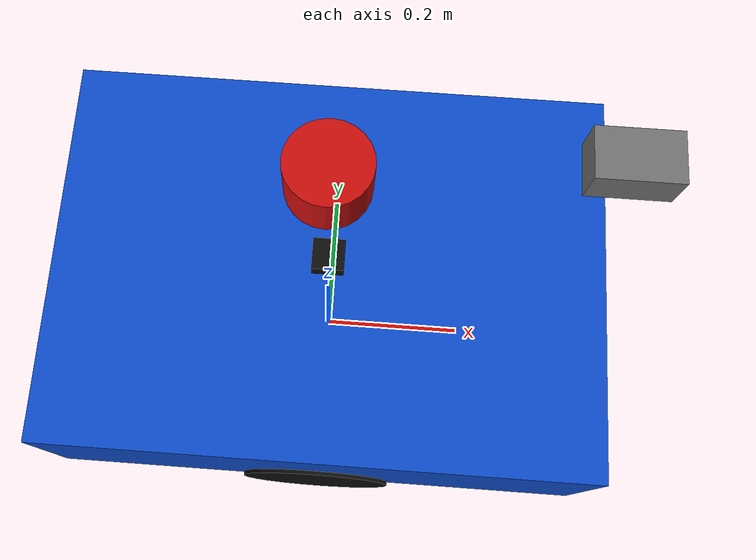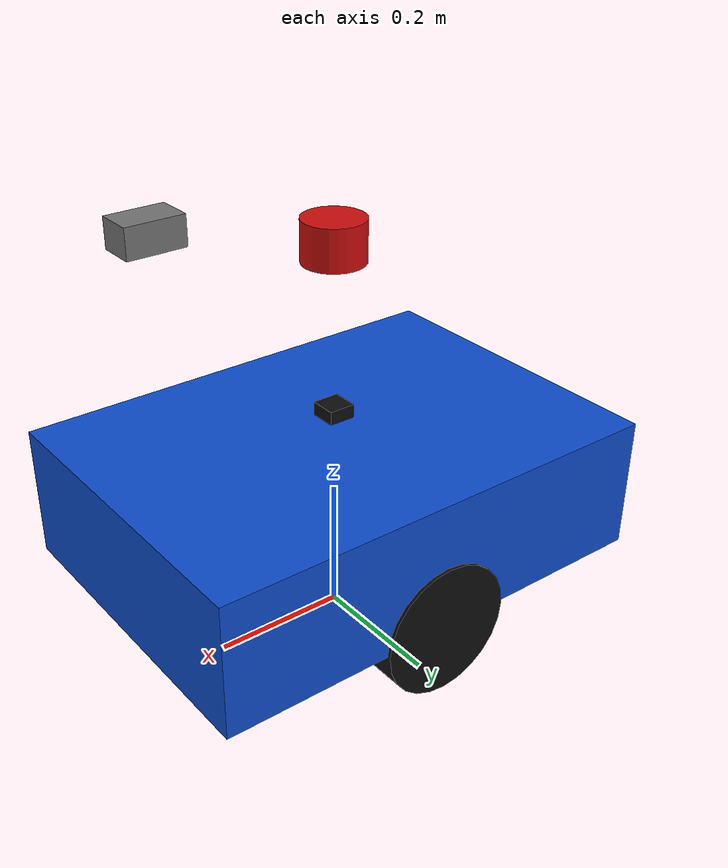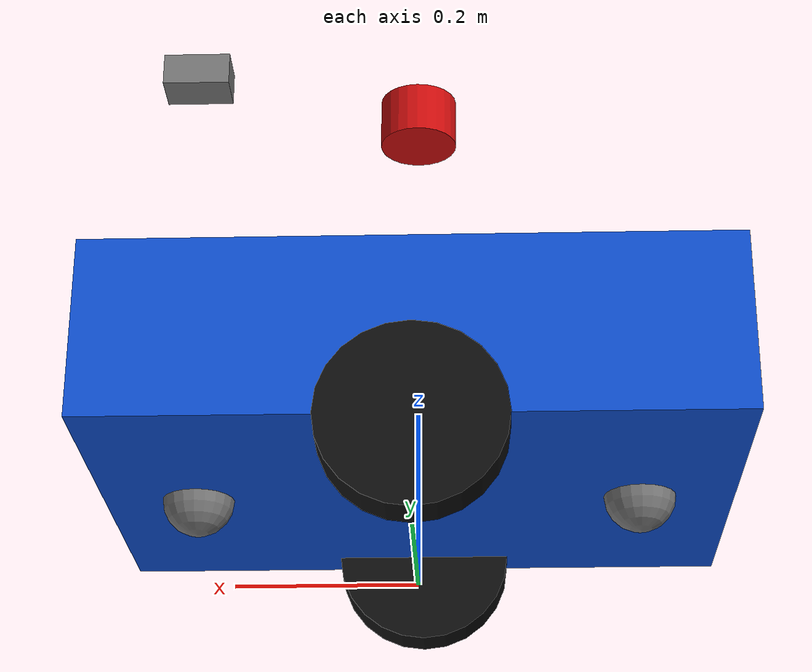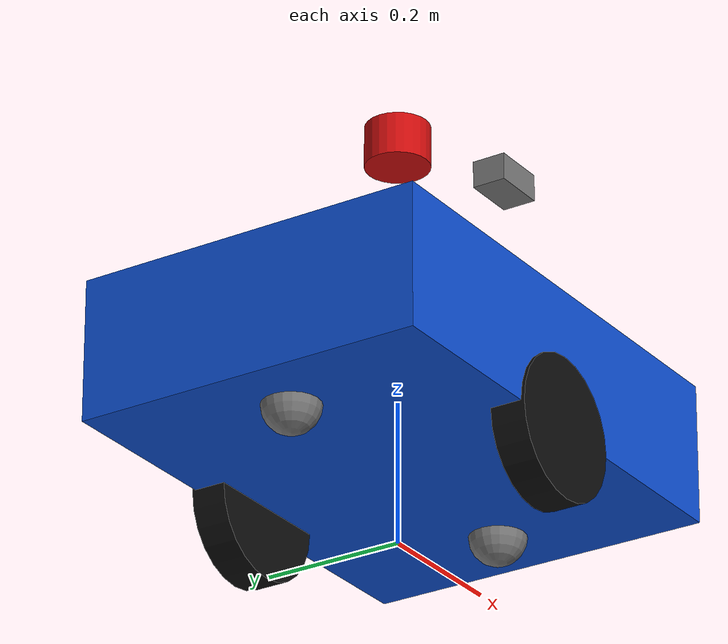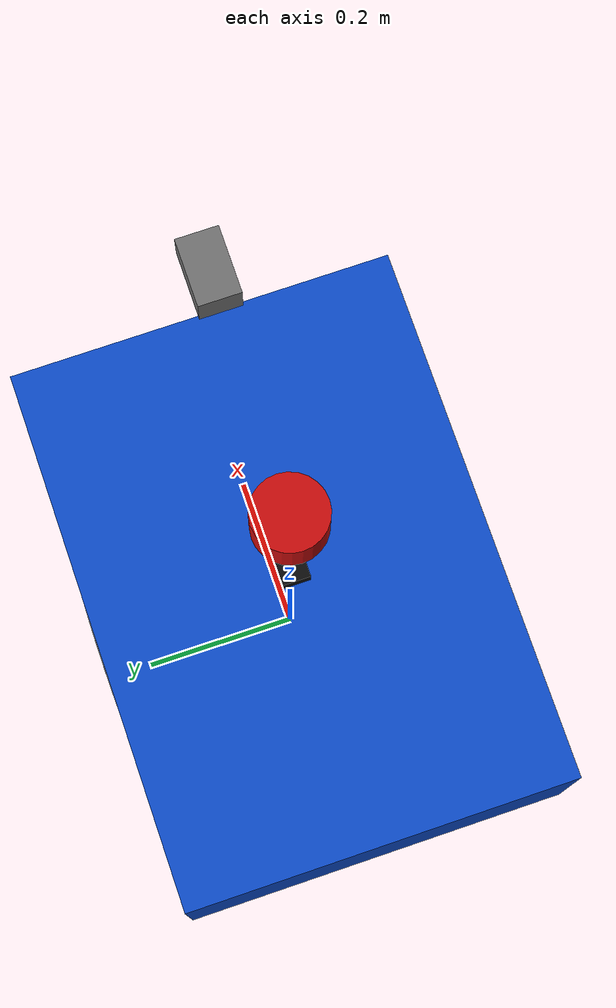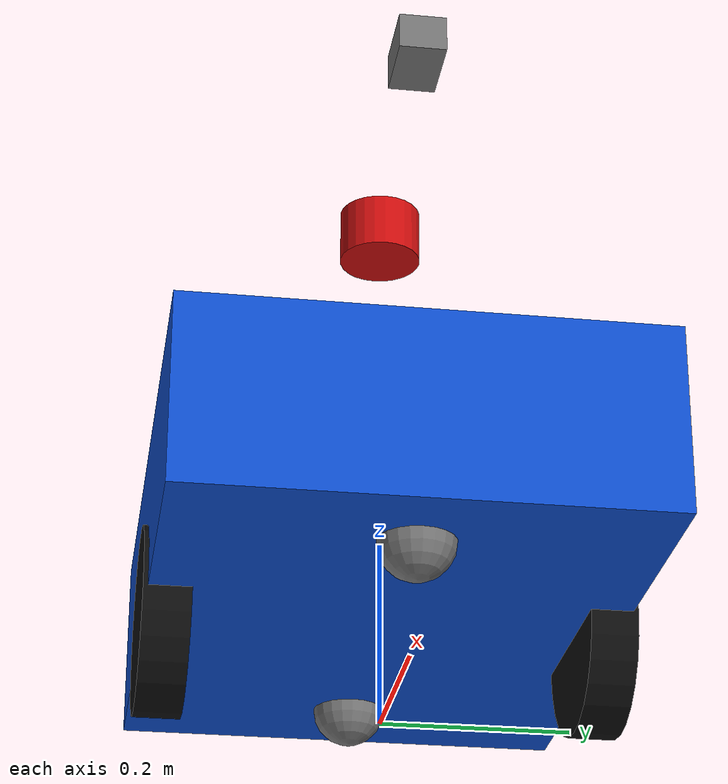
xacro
<?xml version="1.0"?>

<robot name="autonomous_shelf_robot"
       xmlns:xacro="http://www.ros.org/wiki/xacro">

  <xacro:include filename="common_properties.xacro"/>
  <xacro:include filename="base.xacro"/>
  <xacro:include filename="wheels.xacro"/>
  <xacro:include filename="sensors.xacro"/>
  <xacro:include filename="ros2_control.xacro"/>
  <xacro:include filename="gazebo.xacro"/>
  <xacro:shelf_robot_ros2_control/>

</robot>

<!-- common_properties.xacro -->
<robot xmlns:xacro="http://www.ros.org/wiki/xacro">

  <!-- Mathematical constants -->

  <!-- Base dimensions -->
  <xacro:property name="base_length" value="0.70"/>
  <xacro:property name="base_width" value="0.50"/>
  <xacro:property name="base_height" value="0.20"/>

  <!-- Base ground clearance -->
  <xacro:property name="base_ground_clearance" value="0.10"/>

  <!-- Wheel dimensions -->
  <xacro:property name="wheel_radius" value="0.10"/>
  <xacro:property name="wheel_width" value="0.05"/>
  <xacro:property name="wheel_separation" value="0.46"/>

  <!-- Caster dimensions -->
  <xacro:property name="caster_radius" value="0.04"/>

  <!-- Sensor placement -->
  <xacro:property name="lidar_height" value="0.28"/>
  <xacro:property name="camera_height" value="0.35"/>

  <!-- Approximate component masses -->
  <xacro:property name="base_mass" value="30.0"/>
  <xacro:property name="wheel_mass" value="2.0"/>
  <xacro:property name="caster_mass" value="0.5"/>

  <!-- Colors -->
  <material name="robot_blue">
    <color rgba="0.05 0.30 0.80 1.0"/>
  </material>

  <material name="robot_black">
    <color rgba="0.05 0.05 0.05 1.0"/>
  </material>

  <material name="robot_gray">
    <color rgba="0.45 0.45 0.45 1.0"/>
  </material>

  <material name="sensor_red">
    <color rgba="0.80 0.05 0.05 1.0"/>
  </material>

  <!-- Inertial calculation for a rectangular box -->
  <xacro:macro name="box_inertial" params="mass x y z origin_xyz:='0 0 0'">
    <inertial>
      <origin xyz="${origin_xyz}" rpy="0 0 0"/>
      <mass value="${mass}"/>
      <inertia
        ixx="${mass * (y*y + z*z) / 12.0}"
        ixy="0.0"
        ixz="0.0"
        iyy="${mass * (x*x + z*z) / 12.0}"
        iyz="0.0"
        izz="${mass * (x*x + y*y) / 12.0}"/>
    </inertial>
  </xacro:macro>

  <!-- Inertial calculation for a cylinder aligned with the Y axis -->
  <xacro:macro name="wheel_inertial" params="mass radius width">
    <inertial>
      <origin xyz="0 0 0" rpy="0 0 0"/>
      <mass value="${mass}"/>
      <inertia
        ixx="${mass * (3*radius*radius + width*width) / 12.0}"
        ixy="0.0"
        ixz="0.0"
        iyy="${mass * radius*radius / 2.0}"
        iyz="0.0"
        izz="${mass * (3*radius*radius + width*width) / 12.0}"/>
    </inertial>
  </xacro:macro>

</robot>

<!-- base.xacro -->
<robot xmlns:xacro="http://www.ros.org/wiki/xacro">

  <!-- Ground-level navigation reference -->
  <link name="base_footprint"/>

  <!-- Main robot chassis -->
  <link name="base_link">
    <visual>
      <origin xyz="0 0 0" rpy="0 0 0"/>
      <geometry>
        <box size="${base_length} ${base_width} ${base_height}"/>
      </geometry>
      <material name="robot_blue"/>
    </visual>

    <collision>
      <origin xyz="0 0 0" rpy="0 0 0"/>
      <geometry>
        <box size="${base_length} ${base_width} ${base_height}"/>
      </geometry>
    </collision>

    <xacro:box_inertial
      mass="${base_mass}"
      x="${base_length}"
      y="${base_width}"
      z="${base_height}"/>
  </link>

  <!-- Position base_link above the floor -->
  <joint name="base_footprint_joint" type="fixed">
    <parent link="base_footprint"/>
    <child link="base_link"/>
    <origin
      xyz="0 0 ${base_ground_clearance + base_height / 2.0}"
      rpy="0 0 0"/>
  </joint>
  <xacro:macro name="caster" params="name x_position">

    <link name="${name}_caster_link">
      <visual>
        <origin xyz="0 0 0" rpy="0 0 0"/>
        <geometry>
          <sphere radius="${caster_radius}"/>
        </geometry>
        <material name="robot_gray"/>
      </visual>

      <collision>
        <origin xyz="0 0 0" rpy="0 0 0"/>
        <geometry>
          <sphere radius="${caster_radius}"/>
        </geometry>
      </collision>

      <inertial>
        <origin xyz="0 0 0" rpy="0 0 0"/>
        <mass value="${caster_mass}"/>
        <inertia
          ixx="${2.0 * caster_mass * caster_radius * caster_radius / 5.0}"
          ixy="0.0"
          ixz="0.0"
          iyy="${2.0 * caster_mass * caster_radius * caster_radius / 5.0}"
          iyz="0.0"
          izz="${2.0 * caster_mass * caster_radius * caster_radius / 5.0}"/>
      </inertial>
    </link>

    <joint name="${name}_caster_joint" type="fixed">
      <parent link="base_link"/>
      <child link="${name}_caster_link"/>
      <origin
        xyz="${x_position} 0 ${-base_height / 2.0}"
        rpy="0 0 0"/>
    </joint>

  </xacro:macro>

  <xacro:caster name="front" x_position="${base_length * 0.35}"/>
  <xacro:caster name="rear" x_position="${-base_length * 0.35}"/>

</robot>

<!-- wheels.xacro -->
<robot xmlns:xacro="http://www.ros.org/wiki/xacro">

  <xacro:macro name="drive_wheel" params="name side_sign">

    <link name="${name}_wheel_link">
      <visual>
        <origin xyz="0 0 0" rpy="${pi / 2.0} 0 0"/>
        <geometry>
          <cylinder radius="${wheel_radius}" length="${wheel_width}"/>
        </geometry>
        <material name="robot_black"/>
      </visual>

      <collision>
        <origin xyz="0 0 0" rpy="${pi / 2.0} 0 0"/>
        <geometry>
          <cylinder radius="${wheel_radius}" length="${wheel_width}"/>
        </geometry>
      </collision>

      <xacro:wheel_inertial
        mass="${wheel_mass}"
        radius="${wheel_radius}"
        width="${wheel_width}"/>
    </link>

    <joint name="${name}_wheel_joint" type="continuous">
      <parent link="base_link"/>
      <child link="${name}_wheel_link"/>
      <origin
        xyz="0 ${side_sign * wheel_separation / 2.0} ${-base_height / 2.0}"
        rpy="0 0 0"/>
      <axis xyz="0 1 0"/>
      <dynamics damping="0.1" friction="0.1"/>
    </joint>

  </xacro:macro>

  <xacro:drive_wheel name="left" side_sign="1"/>
  <xacro:drive_wheel name="right" side_sign="-1"/>

</robot>

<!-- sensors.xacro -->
<robot xmlns:xacro="http://www.ros.org/wiki/xacro">

  <link name="lidar_link">
    <visual>
      <geometry>
        <cylinder radius="0.045" length="0.06"/>
      </geometry>
      <material name="sensor_red"/>
    </visual>

    <collision>
      <geometry>
        <cylinder radius="0.045" length="0.06"/>
      </geometry>
    </collision>

    <inertial>
      <mass value="0.20"/>
      <inertia
        ixx="0.00011625"
        ixy="0.0"
        ixz="0.0"
        iyy="0.00011625"
        iyz="0.0"
        izz="0.0002025"/>
    </inertial>
  </link>

  <joint name="lidar_joint" type="fixed">
    <parent link="base_link"/>
    <child link="lidar_link"/>
    <origin
      xyz="0 0 ${base_height / 2.0 + lidar_height}"
      rpy="0 0 0"/>
  </joint>

  <link name="camera_link">
    <visual>
      <geometry>
        <box size="0.08 0.05 0.04"/>
      </geometry>
      <material name="robot_gray"/>
    </visual>

    <collision>
      <geometry>
        <box size="0.08 0.05 0.04"/>
      </geometry>
    </collision>

    <inertial>
      <mass value="0.15"/>
      <inertia
        ixx="0.00005125"
        ixy="0.0"
        ixz="0.0"
        iyy="0.0001"
        iyz="0.0"
        izz="0.00011125"/>
    </inertial>
  </link>

  <joint name="camera_joint" type="fixed">
    <parent link="base_link"/>
    <child link="camera_link"/>
    <origin
      xyz="${base_length / 2.0 - 0.08} 0 ${base_height / 2.0 + camera_height}"
      rpy="0 0 0"/>
  </joint>

  <link name="camera_optical_frame"/>

  <joint name="camera_optical_joint" type="fixed">
    <parent link="camera_link"/>
    <child link="camera_optical_frame"/>
    <origin
      xyz="0.04 0 0"
      rpy="${-pi / 2.0} 0 ${-pi / 2.0}"/>
  </joint>

  <link name="imu_link">
    <visual>
      <geometry>
        <box size="0.04 0.04 0.02"/>
      </geometry>
      <material name="robot_black"/>
    </visual>

    <collision>
      <geometry>
        <box size="0.04 0.04 0.02"/>
      </geometry>
    </collision>

    <inertial>
      <mass value="0.05"/>
      <inertia
        ixx="0.000008333"
        ixy="0.0"
        ixz="0.0"
        iyy="0.000008333"
        iyz="0.0"
        izz="0.000013333"/>
    </inertial>
  </link>

  <joint name="imu_joint" type="fixed">
    <parent link="base_link"/>
    <child link="imu_link"/>
    <origin
      xyz="0 0 ${base_height / 2.0 + 0.03}"
      rpy="0 0 0"/>
  </joint>

</robot>
